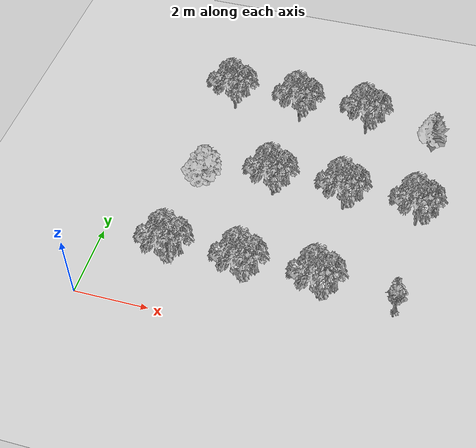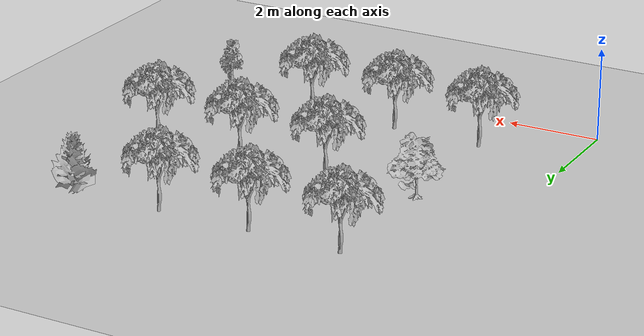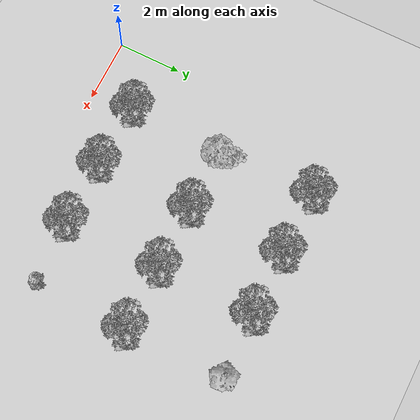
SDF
<sdf version="1.6">
 <world name="default">
  <light name="sun" type="directional">
   <pose>0 0 10 0 -0 0</pose>
   <diffuse>0.8 0.8 0.8 1</diffuse>
   <specular>0.2 0.2 0.2 1</specular>
   <attenuation>
    <range>1000</range>
    <constant>0.9</constant>
    <linear>0.01</linear>
    <quadratic>0.001</quadratic>
   </attenuation>
   <direction>-0.5 0.1 -0.9</direction>
  </light>
  <model name="ground_plane">
   <static>1</static>
   <link name="link">
    <collision name="collision">
     <geometry><plane><normal>0 0 1</normal><size>100 100</size></plane></geometry>
     <surface>
      <contact><collide_bitmask>65535</collide_bitmask></contact>
      <friction><ode><mu>100</mu><mu2>50</mu2></ode></friction>
     </surface>
    </collision>
    <visual name="visual">
     <cast_shadows>0</cast_shadows>
     <geometry><plane><normal>0 0 1</normal><size>100 100</size></plane></geometry>
     <material>
      <script><uri>file://media/materials/scripts/gazebo.material</uri><name>Gazebo/Grey</name></script>
     </material>
    </visual>
   </link>
  </model>
  <gravity>0 0 -9.8</gravity>
  <magnetic_field>6e-06 2.3e-05 -4.2e-05</magnetic_field>
  <atmosphere type="adiabatic"/>
  <physics name="default_physics" default="0" type="ode">
   <max_step_size>0.001</max_step_size>
   <real_time_factor>1</real_time_factor>
   <real_time_update_rate>1000</real_time_update_rate>
  </physics>
  <scene><ambient>0.4 0.4 0.4 1</ambient><background>0.7 0.7 0.7 1</background><shadows>1</shadows></scene>
  <audio><device>default</device></audio>
  <spherical_coordinates>
   <surface_model>EARTH_WGS84</surface_model>
   <latitude_deg>0</latitude_deg>
   <longitude_deg>0</longitude_deg>
   <elevation>0</elevation>
   <heading_deg>0</heading_deg>
  </spherical_coordinates>
  <model name="Tree 2 0.7">
   <static>1</static>
   <pose>1.99998 1.51411 0 1.57079 -0 0</pose>
   <link name="link">
    <collision name="collision">
     <geometry><mesh><scale>0.7 0.7 0.7</scale><uri>model://tree_2/meshes/tree_2.obj</uri></mesh></geometry>
    </collision>
    <visual name="visual">
     <geometry><mesh><scale>0.7 0.7 0.7</scale><uri>model://tree_2/meshes/tree_2.obj</uri></mesh></geometry>
    </visual>
   </link>
  </model>
  <model name="Tree 2 0.7_1">
   <static>1</static>
   <pose>1.9895 7.48392 0 1.57079 -0 0</pose>
   <link name="link">
    <collision name="collision">
     <geometry><mesh><scale>0.7 0.7 0.7</scale><uri>model://tree_2/meshes/tree_2.obj</uri></mesh></geometry>
    </collision>
    <visual name="visual">
     <geometry><mesh><scale>0.7 0.7 0.7</scale><uri>model://tree_2/meshes/tree_2.obj</uri></mesh></geometry>
    </visual>
   </link>
  </model>
  <model name="Tree 2 0.7_2">
   <static>1</static>
   <pose>3.9885 1.46303 0 1.57079 -0 0</pose>
   <link name="link">
    <collision name="collision">
     <geometry><mesh><scale>0.7 0.7 0.7</scale><uri>model://tree_2/meshes/tree_2.obj</uri></mesh></geometry>
    </collision>
    <visual name="visual">
     <geometry><mesh><scale>0.7 0.7 0.7</scale><uri>model://tree_2/meshes/tree_2.obj</uri></mesh></geometry>
    </visual>
   </link>
  </model>
  <model name="Tree 2 0.7_3">
   <static>1</static>
   <pose>5.98881 1.45892 0 1.57079 -0 0</pose>
   <link name="link">
    <collision name="collision">
     <geometry><mesh><scale>0.7 0.7 0.7</scale><uri>model://tree_2/meshes/tree_2.obj</uri></mesh></geometry>
    </collision>
    <visual name="visual">
     <geometry><mesh><scale>0.7 0.7 0.7</scale><uri>model://tree_2/meshes/tree_2.obj</uri></mesh></geometry>
    </visual>
   </link>
  </model>
  <model name="Tree 2 0.7_4">
   <static>1</static>
   <pose>3.98632 4.46966 0 1.57079 -0 0</pose>
   <link name="link">
    <collision name="collision">
     <geometry><mesh><scale>0.7 0.7 0.7</scale><uri>model://tree_2/meshes/tree_2.obj</uri></mesh></geometry>
    </collision>
    <visual name="visual">
     <geometry><mesh><scale>0.7 0.7 0.7</scale><uri>model://tree_2/meshes/tree_2.obj</uri></mesh></geometry>
    </visual>
   </link>
  </model>
  <model name="Tree 2 0.7_5">
   <static>1</static>
   <pose>5.9748 4.47723 0 1.57079 -0 0</pose>
   <link name="link">
    <collision name="collision">
     <geometry><mesh><scale>0.7 0.7 0.7</scale><uri>model://tree_2/meshes/tree_2.obj</uri></mesh></geometry>
    </collision>
    <visual name="visual">
     <geometry><mesh><scale>0.7 0.7 0.7</scale><uri>model://tree_2/meshes/tree_2.obj</uri></mesh></geometry>
    </visual>
   </link>
  </model>
  <model name="Tree 2 0.7_6">
   <static>1</static>
   <pose>3.98403 7.45619 0 1.57079 -0 0</pose>
   <link name="link">
    <collision name="collision">
     <geometry><mesh><scale>0.7 0.7 0.7</scale><uri>model://tree_2/meshes/tree_2.obj</uri></mesh></geometry>
    </collision>
    <visual name="visual">
     <geometry><mesh><scale>0.7 0.7 0.7</scale><uri>model://tree_2/meshes/tree_2.obj</uri></mesh></geometry>
    </visual>
   </link>
  </model>
  <model name="Tree 2 0.7_7">
   <static>1</static>
   <pose>5.98021 7.48336 0 1.57079 -0 0</pose>
   <link name="link">
    <collision name="collision">
     <geometry><mesh><scale>0.7 0.7 0.7</scale><uri>model://tree_2/meshes/tree_2.obj</uri></mesh></geometry>
    </collision>
    <visual name="visual">
     <geometry><mesh><scale>0.7 0.7 0.7</scale><uri>model://tree_2/meshes/tree_2.obj</uri></mesh></geometry>
    </visual>
   </link>
  </model>
  <model name="Tree 4">
   <static>1</static>
   <pose>7.97067 1.52453 0 1.57079 -0 0</pose>
   <link name="link">
    <collision name="collision">
     <geometry><mesh><scale>0.3 0.3 0.3</scale><uri>model://tree_4/meshes/tree_4.obj</uri></mesh></geometry>
    </collision>
    <visual name="visual">
     <geometry><mesh><scale>0.3 0.3 0.3</scale><uri>model://tree_4/meshes/tree_4.obj</uri></mesh></geometry>
    </visual>
   </link>
  </model>
  <model name="Tree 2 0.7_0">
   <static>1</static>
   <pose>7.98109 4.44871 0 1.57079 -0 0</pose>
   <link name="link">
    <collision name="collision">
     <geometry><mesh><scale>0.7 0.7 0.7</scale><uri>model://tree_2/meshes/tree_2.obj</uri></mesh></geometry>
    </collision>
    <visual name="visual">
     <geometry><mesh><scale>0.7 0.7 0.7</scale><uri>model://tree_2/meshes/tree_2.obj</uri></mesh></geometry>
    </visual>
   </link>
  </model>
  <model name="Tree 5">
   <static>1</static>
   <pose>7.95355 7.51793 0 1.57079 -0 0</pose>
   <link name="link">
    <collision name="collision">
     <geometry><mesh><scale>1 1 1</scale><uri>model://tree_5/meshes/tree.obj</uri></mesh></geometry>
    </collision>
    <visual name="visual">
     <geometry><mesh><scale>1 1 1</scale><uri>model://tree_5/meshes/tree.obj</uri></mesh></geometry>
    </visual>
   </link>
  </model>
  <model name="Tree 1">
   <static>1</static>
   <pose>1.94822 4.4953 0 1.57079 -0 0</pose>
   <link name="link">
    <collision name="collision">
     <geometry><mesh><scale>1.2 1.2 1.2</scale><uri>model://tree_1/meshes/tree_1.obj</uri></mesh></geometry>
    </collision>
    <visual name="visual">
     <geometry><mesh><scale>1.2 1.2 1.2</scale><uri>model://tree_1/meshes/tree_1.obj</uri></mesh></geometry>
    </visual>
   </link>
  </model>
 </world>
</sdf>
